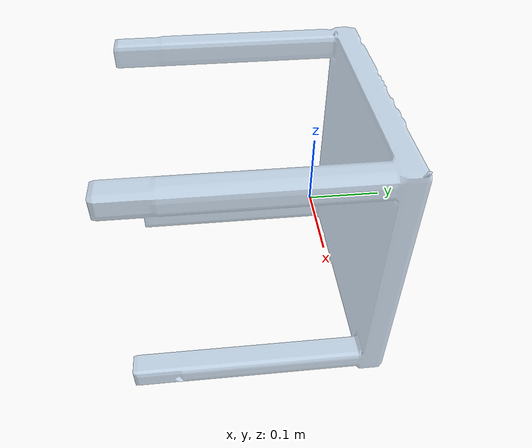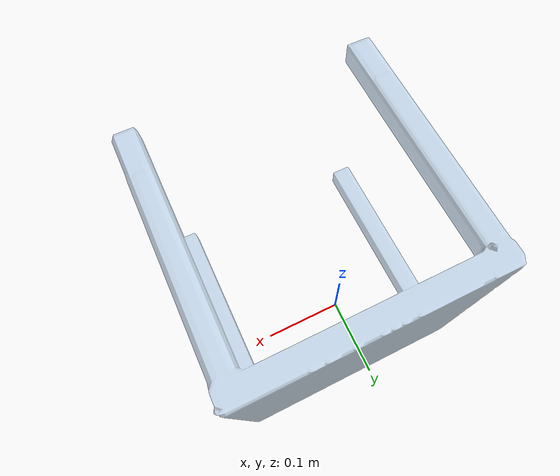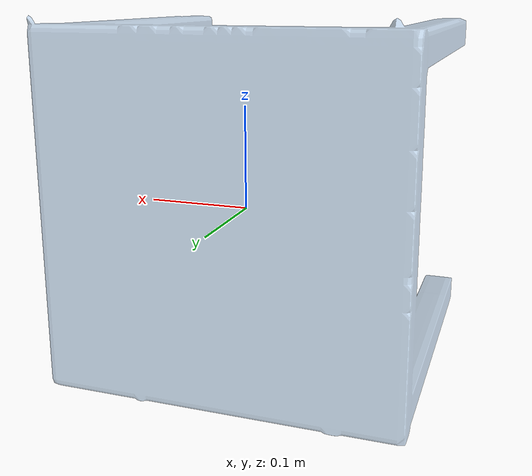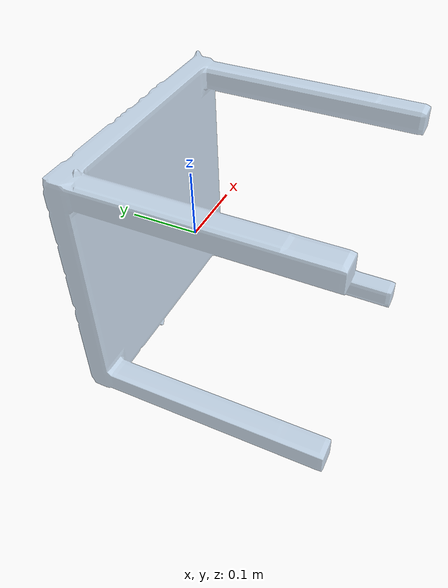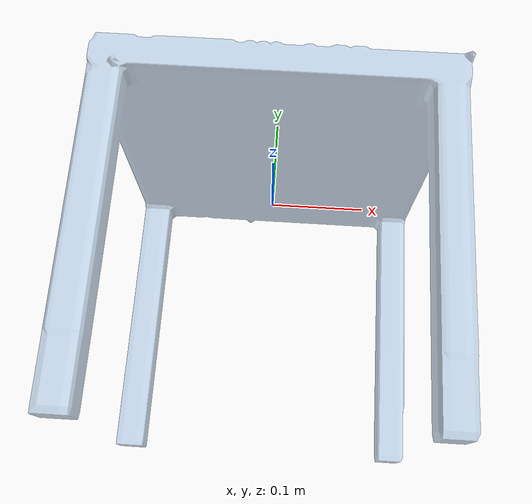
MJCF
<mujoco model="smalltable">
    <compiler meshdir="./"/>

    <default>
        <geom friction="0.9 0.5 0.5" rgba="0.7 0.8 0.9 0.7"/>
        <joint damping="0.5"/>
    </default>

    <asset>
        <mesh name="smalltable_mesh" file="smalltable.obj" scale="1 1 1"/>
    </asset>

    <worldbody>
        <body name="smalltable_link">
            <inertial pos="0 0 0" mass="0.1" diaginertia="0.002 0.002 0.002"/>
            <geom name="smalltable" type="mesh" mesh="smalltable_mesh"
                  pos="0 0 0" quat="1 0 0 0"
                  rgba="0.7 0.8 0.9 0.7"
                  friction="0.9 0.5 0.5"
                  solref="0.02 1"
                  solimp="0.9 0.95 0.001"/>
        </body>
    </worldbody>
</mujoco>
